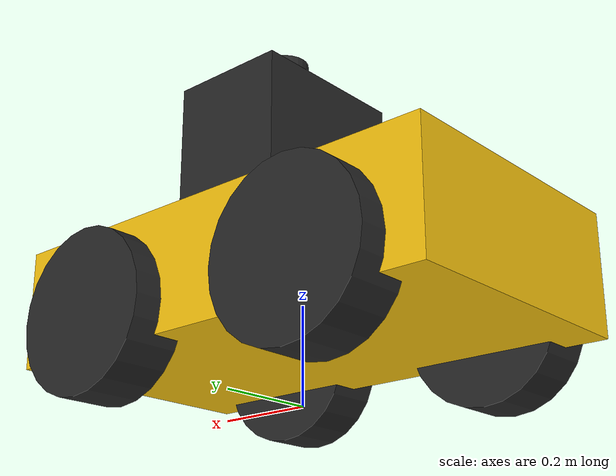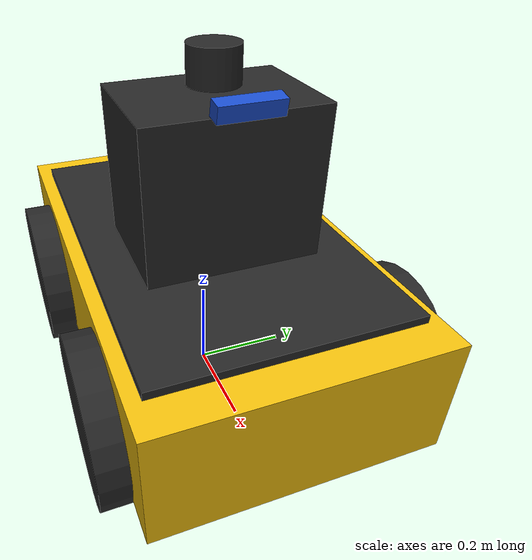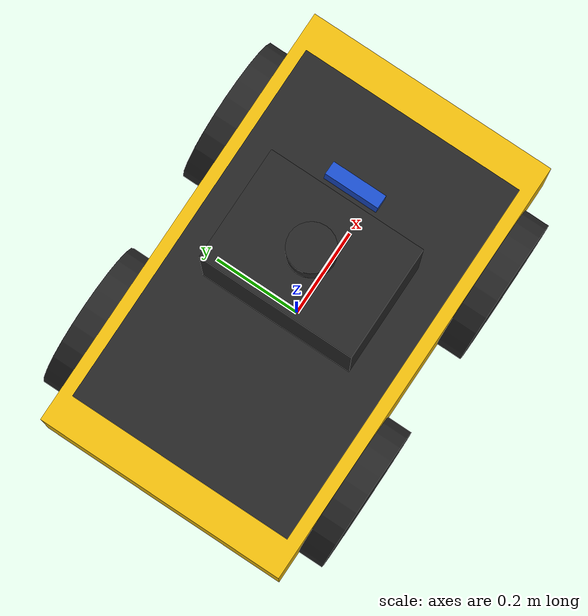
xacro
<?xml version="1.0"?>
<robot name="husky" xmlns:xacro="http://ros.org/wiki/xacro">

  <!-- ================= BASE PROPERTIES ================= -->
  <xacro:property name="PI" value="3.1415926535897931"/>
  <xacro:property name="wheel_radius" value="0.1651"/>
  <xacro:property name="wheel_width" value="0.1143"/>
  <xacro:property name="wheel_base" value="0.5120"/>
  <xacro:property name="track_width" value="0.5708"/>
  <xacro:property name="chassis_length" value="0.9874"/>
  <xacro:property name="chassis_width" value="0.5709"/>
  <xacro:property name="chassis_height" value="0.2475"/>
  <xacro:property name="chassis_mass" value="46.0"/>
  <xacro:property name="wheel_mass" value="2.637"/>

  <!-- Colors / Materials -->
  <material name="husky_yellow">
    <color rgba="0.95 0.75 0.05 1.0"/>
  </material>
  <material name="dark_grey">
    <color rgba="0.15 0.15 0.15 1.0"/>
  </material>
  <material name="black">
    <color rgba="0.05 0.05 0.05 1.0"/>
  </material>
  <material name="sensor_blue">
    <color rgba="0.1 0.3 0.8 1.0"/>
  </material>

  <!-- Base Footprint -->
  <link name="base_footprint"/>

  <joint name="base_footprint_joint" type="fixed">
    <origin xyz="0 0 ${wheel_radius}" rpy="0 0 0"/>
    <parent link="base_footprint"/>
    <child link="base_link"/>
  </joint>

  <!-- Base Link / Chassis -->
  <link name="base_link">
    <visual>
      <origin xyz="0 0 0.06" rpy="0 0 0"/>
      <geometry>
        <box size="${chassis_length} ${chassis_width} ${chassis_height}"/>
      </geometry>
      <material name="husky_yellow"/>
    </visual>
    <visual>
      <origin xyz="0 0 0.19" rpy="0 0 0"/>
      <geometry>
        <box size="${chassis_length * 0.85} ${chassis_width * 0.9} 0.02"/>
      </geometry>
      <material name="dark_grey"/>
    </visual>
    <collision>
      <origin xyz="0 0 0.06" rpy="0 0 0"/>
      <geometry>
        <box size="${chassis_length} ${chassis_width} ${chassis_height}"/>
      </geometry>
    </collision>
    <inertial>
      <origin xyz="0 0 0.06" rpy="0 0 0"/>
      <mass value="${chassis_mass}"/>
      <inertia ixx="0.6022" ixy="-0.02364" ixz="-0.1197"
               iyy="1.7386" iyz="-0.001544"
               izz="2.0296"/>
    </inertial>
  </link>

  <gazebo reference="base_link">
    <material>Gazebo/Yellow</material>
  </gazebo>

  <!-- Macro for Wheel -->
  <xacro:macro name="husky_wheel" params="prefix x_offset y_offset">
    <link name="${prefix}_wheel_link">
      <visual>
        <origin xyz="0 0 0" rpy="${PI/2} 0 0"/>
        <geometry>
          <cylinder radius="${wheel_radius}" length="${wheel_width}"/>
        </geometry>
        <material name="dark_grey"/>
      </visual>
      <collision>
        <origin xyz="0 0 0" rpy="${PI/2} 0 0"/>
        <geometry>
          <cylinder radius="${wheel_radius}" length="${wheel_width}"/>
        </geometry>
      </collision>
      <inertial>
        <origin xyz="0 0 0" rpy="0 0 0"/>
        <mass value="${wheel_mass}"/>
        <inertia ixx="0.02467" ixy="0" ixz="0"
                 iyy="0.04411" iyz="0"
                 izz="0.02467"/>
      </inertial>
    </link>

    <joint name="${prefix}_wheel_joint" type="continuous">
      <origin xyz="${x_offset} ${y_offset} 0" rpy="0 0 0"/>
      <parent link="base_link"/>
      <child link="${prefix}_wheel_link"/>
      <axis xyz="0 1 0"/>
      <limit effort="100.0" velocity="20.0"/>
      <dynamics damping="0.5" friction="0.8"/>
    </joint>

    <gazebo reference="${prefix}_wheel_link">
      <mu1 value="1.2"/>
      <mu2 value="1.2"/>
      <kp value="1000000.0"/>
      <kd value="100.0"/>
      <fdir1 value="1 0 0"/>
      <material>Gazebo/DarkGrey</material>
    </gazebo>
  </xacro:macro>

  <xacro:husky_wheel prefix="front_left"  x_offset="${wheel_base/2}"  y_offset="${track_width/2}"/>
  <xacro:husky_wheel prefix="front_right" x_offset="${wheel_base/2}"  y_offset="-${track_width/2}"/>
  <xacro:husky_wheel prefix="rear_left"   x_offset="-${wheel_base/2}" y_offset="${track_width/2}"/>
  <xacro:husky_wheel prefix="rear_right"  x_offset="-${wheel_base/2}" y_offset="-${track_width/2}"/>

  <!-- Sensor Arch -->
  <link name="sensor_arch">
    <visual>
      <origin xyz="0 0 0.15" rpy="0 0 0"/>
      <geometry>
        <box size="0.25 0.35 0.30"/>
      </geometry>
      <material name="dark_grey"/>
    </visual>
    <collision>
      <origin xyz="0 0 0.15" rpy="0 0 0"/>
      <geometry>
        <box size="0.25 0.35 0.30"/>
      </geometry>
    </collision>
    <inertial>
      <origin xyz="0 0 0.15" rpy="0 0 0"/>
      <mass value="2.0"/>
      <inertia ixx="0.03" ixy="0" ixz="0" iyy="0.03" iyz="0" izz="0.03"/>
    </inertial>
  </link>

  <joint name="sensor_arch_joint" type="fixed">
    <origin xyz="0.05 0 0.20" rpy="0 0 0"/>
    <parent link="base_link"/>
    <child link="sensor_arch"/>
  </joint>

  <!-- RGB-D Camera Link -->
  <link name="camera_link">
    <visual>
      <origin xyz="0 0 0" rpy="0 0 0"/>
      <geometry>
        <box size="0.03 0.12 0.03"/>
      </geometry>
      <material name="sensor_blue"/>
    </visual>
    <collision>
      <origin xyz="0 0 0" rpy="0 0 0"/>
      <geometry>
        <box size="0.03 0.12 0.03"/>
      </geometry>
    </collision>
    <inertial>
      <origin xyz="0 0 0" rpy="0 0 0"/>
      <mass value="0.2"/>
      <inertia ixx="0.001" ixy="0" ixz="0" iyy="0.001" iyz="0" izz="0.001"/>
    </inertial>
  </link>

  <joint name="camera_joint" type="fixed">
    <origin xyz="0.15 0 0.32" rpy="0 0.1745 0"/>
    <parent link="sensor_arch"/>
    <child link="camera_link"/>
  </joint>

  <link name="camera_optical_frame"/>
  <joint name="camera_optical_joint" type="fixed">
    <origin xyz="0 0 0" rpy="${-PI/2} 0 ${-PI/2}"/>
    <parent link="camera_link"/>
    <child link="camera_optical_frame"/>
  </joint>

  <!-- 3D LiDAR Sensor Link -->
  <link name="lidar_link">
    <visual>
      <origin xyz="0 0 0" rpy="0 0 0"/>
      <geometry>
        <cylinder radius="0.05" length="0.07"/>
      </geometry>
      <material name="dark_grey"/>
    </visual>
    <collision>
      <origin xyz="0 0 0" rpy="0 0 0"/>
      <geometry>
        <cylinder radius="0.05" length="0.07"/>
      </geometry>
    </collision>
    <inertial>
      <origin xyz="0 0 0" rpy="0 0 0"/>
      <mass value="0.8"/>
      <inertia ixx="0.001" ixy="0" ixz="0" iyy="0.001" iyz="0" izz="0.001"/>
    </inertial>
  </link>

  <joint name="lidar_joint" type="fixed">
    <origin xyz="0.0 0 0.35" rpy="0 0 0"/>
    <parent link="sensor_arch"/>
    <child link="lidar_link"/>
  </joint>

  <!-- IMU Sensor -->
  <link name="imu_link">
    <inertial>
      <origin xyz="0 0 0" rpy="0 0 0"/>
      <mass value="0.05"/>
      <inertia ixx="0.0001" ixy="0" ixz="0" iyy="0.0001" iyz="0" izz="0.0001"/>
    </inertial>
  </link>

  <joint name="imu_joint" type="fixed">
    <origin xyz="0 0 0.05" rpy="0 0 0"/>
    <parent link="base_link"/>
    <child link="imu_link"/>
  </joint>

  <!-- ================= GAZEBO PLUGINS ================= -->

  <!-- Skid Steer / Differential Drive Plugin -->
  <gazebo>
    <plugin name="diff_drive_controller" filename="libgazebo_ros_diff_drive.so">
      <ros>
        <remapping>cmd_vel:=cmd_vel</remapping>
        <remapping>odom:=odom</remapping>
      </ros>
      <update_rate>50</update_rate>
      <num_wheel_pairs>2</num_wheel_pairs>
      <left_joint>front_left_wheel_joint</left_joint>
      <left_joint>rear_left_wheel_joint</left_joint>
      <right_joint>front_right_wheel_joint</right_joint>
      <right_joint>rear_right_wheel_joint</right_joint>
      <wheel_separation>${track_width}</wheel_separation>
      <wheel_diameter>${wheel_radius*2}</wheel_diameter>
      <max_wheel_torque>80</max_wheel_torque>
      <max_wheel_acceleration>3.0</max_wheel_acceleration>
      <publish_odom>true</publish_odom>
      <publish_odom_tf>true</publish_odom_tf>
      <publish_wheel_tf>true</publish_wheel_tf>
      <odometry_frame>odom</odometry_frame>
      <robot_base_frame>base_footprint</robot_base_frame>
    </plugin>
  </gazebo>

  <!-- IMU Plugin -->
  <gazebo reference="imu_link">
    <sensor name="imu_sensor" type="imu">
      <always_on>true</always_on>
      <update_rate>100</update_rate>
      <plugin name="imu_plugin" filename="libgazebo_ros_imu_sensor.so">
        <ros>
          <remapping>~/out:=imu/data</remapping>
        </ros>
        <initial_orientation_as_reference>false</initial_orientation_as_reference>
        <frame_name>imu_link</frame_name>
      </plugin>
    </sensor>
  </gazebo>

</robot>
